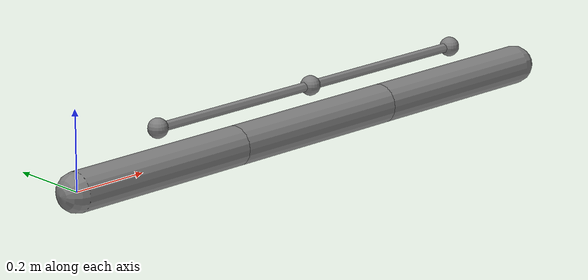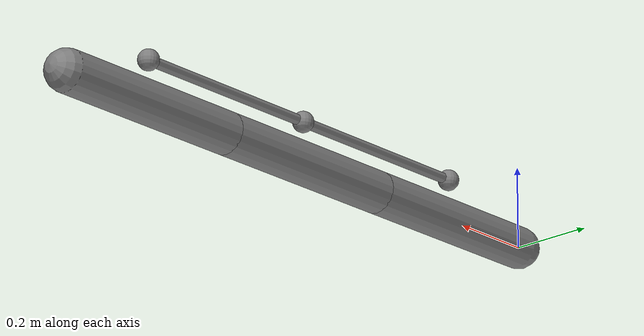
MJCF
<mujoco model="fixed_site">
  <worldbody>
    <body>
      <joint name="joint0" type="hinge" axis="0 1 0"/>
      <geom type="capsule" size="0.05 0.5" fromto="0 0 0 0.5 0 0"/>
      <site name="site0" pos="0.25 0 0.1" size="0.025"/>
      <body pos="0.5 0 0">
        <joint name="joint1" type="hinge" axis="0 1 0"/>
        <geom type="capsule" size="0.05 0.5" fromto="0 0 0 0.5 0 0"/>
        <site name="site1" pos="0.25 0 0.1" size="0.025"/>
        <body pos="0.5 0 0">
          <joint name="joint2" type="hinge" axis="0 1 0"/>
          <geom type="capsule" size="0.05 0.5" fromto="0 0 0 0.5 0 0"/>
          <site name="site2" pos="0.25 0 0.1" size="0.025"/>
        </body>
      </body>
    </body>
  </worldbody>
  <tendon>
    <spatial name="spatial0" width="0.0125">
      <site site="site0"/>
      <site site="site1"/>
      <site site="site2"/>
    </spatial>
    <spatial name="spatial1" width="0.0125" actuatorfrclimited="true" actuatorfrcrange="-1 1">
      <site site="site1"/>
      <site site="site2"/>
    </spatial>
    <fixed name="fixed0" actuatorfrclimited="true" actuatorfrcrange="-10 10">
      <joint joint="joint0" coef=".1"/>
      <joint joint="joint1" coef=".2"/>
      <joint joint="joint2" coef=".3"/>
    </fixed>
    <fixed name="fixed1" actuatorfrclimited="true" actuatorfrcrange="0 1">
      <joint joint="joint0" coef=".1"/>
      <joint joint="joint2" coef=".3"/>
    </fixed>
  </tendon>
  <actuator>
    <motor tendon="spatial0"/>
    <motor tendon="spatial0"/>
    <motor tendon="spatial0"/>
    <motor tendon="spatial1"/>
    <motor tendon="spatial1"/>
    <motor tendon="fixed0"/>
    <motor tendon="fixed1"/>
    <motor tendon="fixed1"/>
  </actuator>
  <sensor>
    <tendonactuatorfrc tendon="spatial0"/>
    <tendonactuatorfrc tendon="spatial1"/>
    <tendonactuatorfrc tendon="fixed0"/>
    <tendonactuatorfrc tendon="fixed1"/>
  </sensor>
</mujoco>
